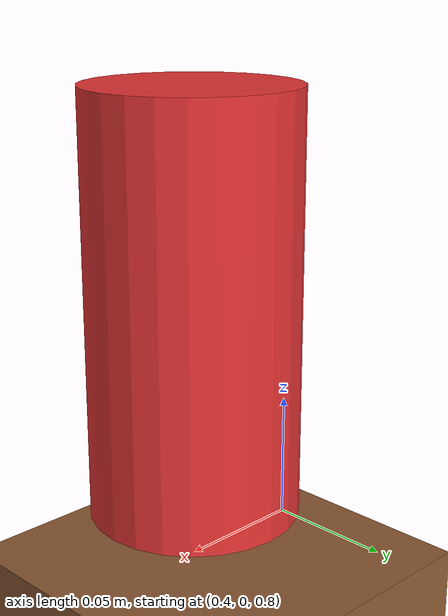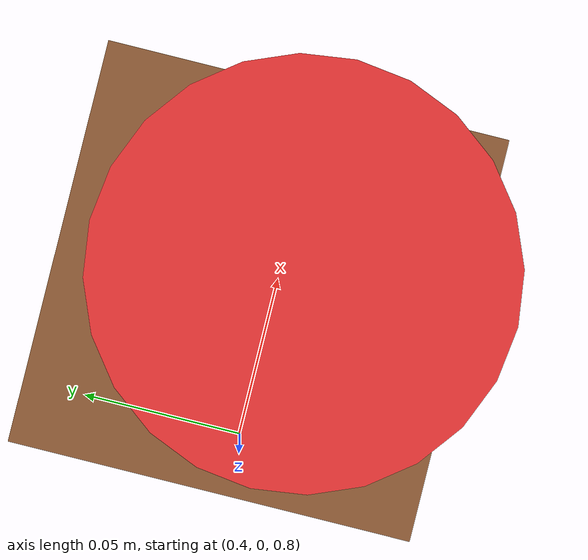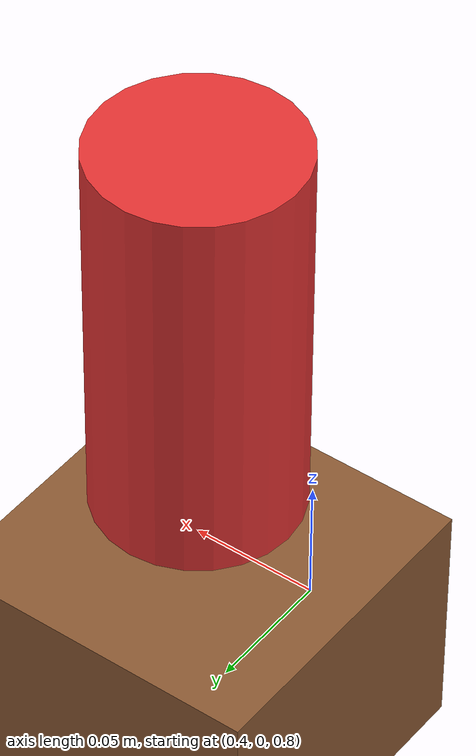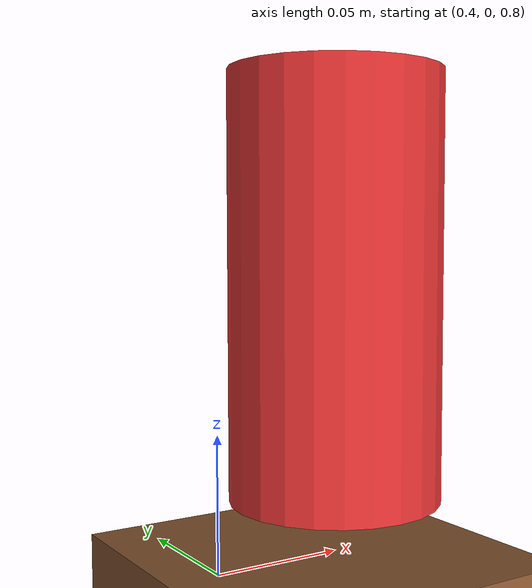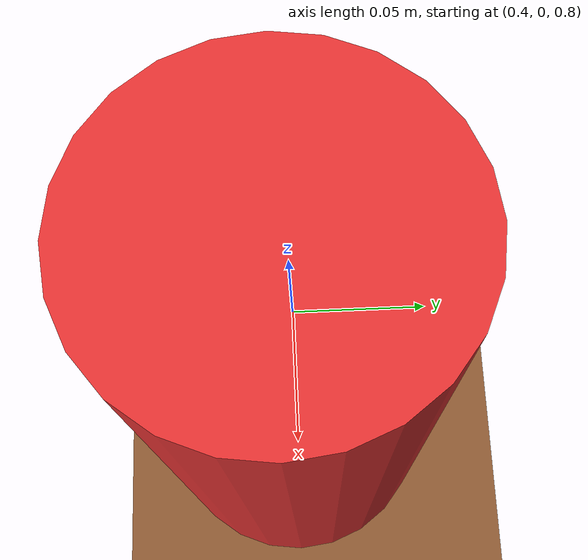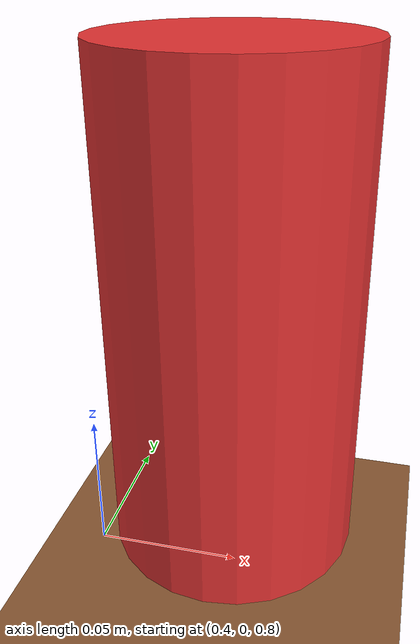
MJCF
<mujoco model="reachability_minimal">
  <compiler angle="radian"/>

  <worldbody>
    <geom name="floor" size="5 5 0.1" type="plane" rgba="0.8 0.8 0.8 1"/>
    <body name="table">
      <geom name="table_top" size="0.8 0.6 0.05" pos="0 0 0.75" type="box" rgba="0.55 0.35 0.2 1"/>
    </body>
    <body name="target" pos="0.45 0 0.9">
      <joint name="target_freejoint" type="free"/>
      <geom name="target_geom" size="0.04 0.08" type="cylinder" mass="0.2" rgba="0.9 0.2 0.2 1"/>
    </body>
  </worldbody>
</mujoco>
